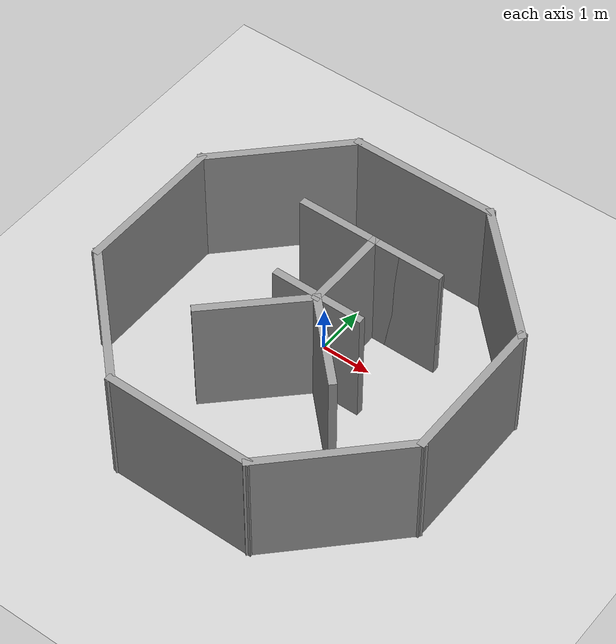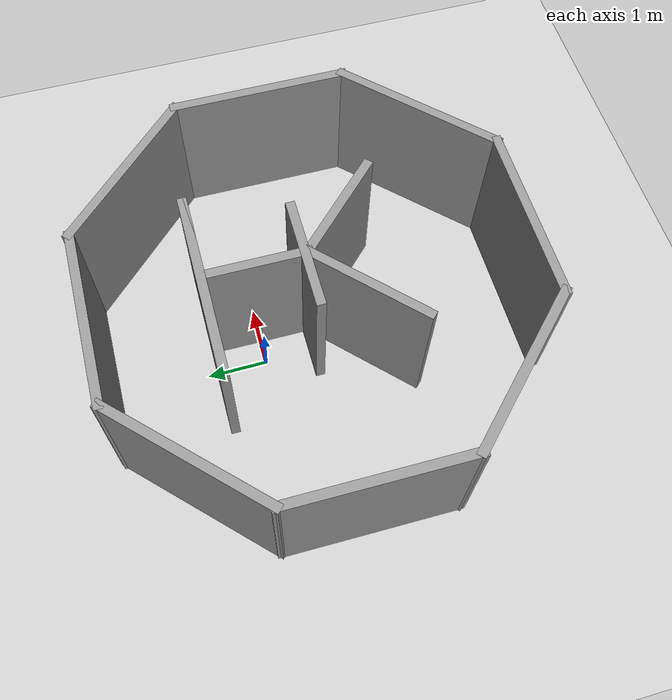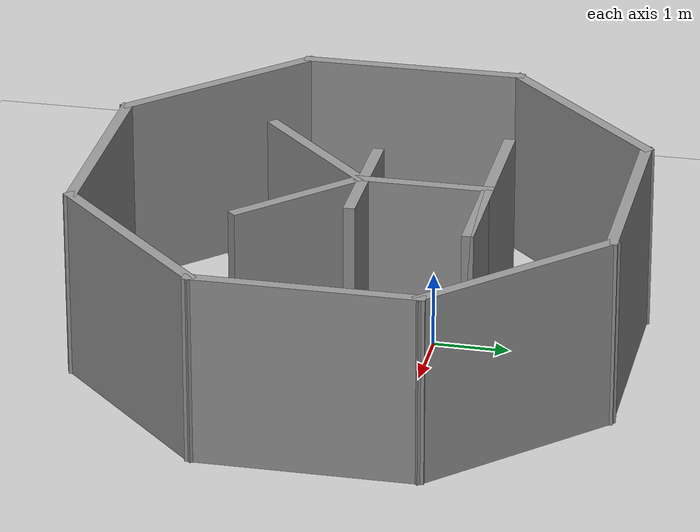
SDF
<sdf version="1.7">
 <world name="default">
  <light name="sun" type="directional">
   <pose>0 0 10 0 -0 0</pose>
   <diffuse>0.8 0.8 0.8 1</diffuse>
   <specular>0.2 0.2 0.2 1</specular>
   <attenuation>
    <range>1000</range>
    <constant>0.9</constant>
    <linear>0.01</linear>
    <quadratic>0.001</quadratic>
   </attenuation>
   <direction>-0.5 0.1 -0.9</direction>
   <spot><inner_angle>0</inner_angle><outer_angle>0</outer_angle><falloff>0</falloff></spot>
  </light>
  <model name="ground_plane">
   <static>1</static>
   <link name="link">
    <collision name="collision">
     <geometry><plane><normal>0 0 1</normal><size>100 100</size></plane></geometry>
     <surface>
      <contact><collide_bitmask>65535</collide_bitmask></contact>
      <friction><ode><mu>100</mu><mu2>50</mu2></ode></friction>
     </surface>
    </collision>
    <visual name="visual">
     <cast_shadows>0</cast_shadows>
     <geometry><plane><normal>0 0 1</normal><size>100 100</size></plane></geometry>
     <material>
      <script><uri>file://media/materials/scripts/gazebo.material</uri><name>Gazebo/Grey</name></script>
     </material>
    </visual>
   </link>
  </model>
  <gravity>0 0 -9.8</gravity>
  <magnetic_field>6e-06 2.3e-05 -4.2e-05</magnetic_field>
  <atmosphere type="adiabatic"/>
  <physics type="ode">
   <max_step_size>0.001</max_step_size>
   <real_time_factor>1</real_time_factor>
   <real_time_update_rate>1000</real_time_update_rate>
  </physics>
  <scene><ambient>0.4 0.4 0.4 1</ambient><background>0.7 0.7 0.7 1</background><shadows>1</shadows></scene>
  <spherical_coordinates>
   <surface_model>EARTH_WGS84</surface_model>
   <latitude_deg>0</latitude_deg>
   <longitude_deg>0</longitude_deg>
   <elevation>0</elevation>
   <heading_deg>0</heading_deg>
  </spherical_coordinates>
  <model name="hik_map">
   <link name="Wall_53">
    <pose>0 -4.00411 0 0 -0 0</pose>
    <visual name="Wall_53_Visual">
     <pose>0 0 1.25 0 -0 0</pose>
     <geometry><box><size>3 0.15 2.5</size></box></geometry>
     <material>
      <script><uri>file://media/materials/scripts/gazebo.material</uri><name>Gazebo/Grey</name></script>
      <ambient>1 1 1 1</ambient>
      <shader type="pixel"/>
     </material>
     <meta><layer>1</layer></meta>
    </visual>
    <collision name="Wall_53_Collision">
     <pose>0 0 1.25 0 -0 0</pose>
     <geometry><box><size>3 0.15 2.5</size></box></geometry>
     <surface>
      <friction>
       <ode><mu>1</mu><mu2>1</mu2><fdir1>0 0 0</fdir1><slip1>0</slip1><slip2>0</slip2></ode>
       <torsional>
        <coefficient>1</coefficient>
        <patch_radius>0</patch_radius>
        <surface_radius>0</surface_radius>
        <use_patch_radius>1</use_patch_radius>
        <ode><slip>0</slip></ode>
       </torsional>
      </friction>
      <bounce><restitution_coefficient>0</restitution_coefficient><threshold>1e+06</threshold></bounce>
      <contact>
       <collide_without_contact>0</collide_without_contact>
       <collide_without_contact_bitmask>1</collide_without_contact_bitmask>
       <collide_bitmask>1</collide_bitmask>
       <ode>
        <soft_cfm>0</soft_cfm>
        <soft_erp>0.2</soft_erp>
        <kp>1e+13</kp>
        <kd>1</kd>
        <max_vel>0.01</max_vel>
        <min_depth>0</min_depth>
       </ode>
       <bullet>
        <split_impulse>1</split_impulse>
        <split_impulse_penetration_threshold>-0.01</split_impulse_penetration_threshold>
        <soft_cfm>0</soft_cfm>
        <soft_erp>0.2</soft_erp>
        <kp>1e+13</kp>
        <kd>1</kd>
       </bullet>
      </contact>
     </surface>
    </collision>
   </link>
   <link name="Wall_54">
    <pose>2.43263 -2.99648 0 0 -0 0.785398</pose>
    <visual name="Wall_54_Visual">
     <pose>0 0 1.25 0 -0 0</pose>
     <geometry><box><size>3 0.15 2.5</size></box></geometry>
     <material>
      <script><uri>file://media/materials/scripts/gazebo.material</uri><name>Gazebo/Grey</name></script>
      <ambient>1 1 1 1</ambient>
      <shader type="pixel"/>
     </material>
     <meta><layer>1</layer></meta>
    </visual>
    <collision name="Wall_54_Collision">
     <pose>0 0 1.25 0 -0 0</pose>
     <geometry><box><size>3 0.15 2.5</size></box></geometry>
     <surface>
      <friction>
       <ode><mu>1</mu><mu2>1</mu2><fdir1>0 0 0</fdir1><slip1>0</slip1><slip2>0</slip2></ode>
       <torsional>
        <coefficient>1</coefficient>
        <patch_radius>0</patch_radius>
        <surface_radius>0</surface_radius>
        <use_patch_radius>1</use_patch_radius>
        <ode><slip>0</slip></ode>
       </torsional>
      </friction>
      <bounce><restitution_coefficient>0</restitution_coefficient><threshold>1e+06</threshold></bounce>
      <contact>
       <collide_without_contact>0</collide_without_contact>
       <collide_without_contact_bitmask>1</collide_without_contact_bitmask>
       <collide_bitmask>1</collide_bitmask>
       <ode>
        <soft_cfm>0</soft_cfm>
        <soft_erp>0.2</soft_erp>
        <kp>1e+13</kp>
        <kd>1</kd>
        <max_vel>0.01</max_vel>
        <min_depth>0</min_depth>
       </ode>
       <bullet>
        <split_impulse>1</split_impulse>
        <split_impulse_penetration_threshold>-0.01</split_impulse_penetration_threshold>
        <soft_cfm>0</soft_cfm>
        <soft_erp>0.2</soft_erp>
        <kp>1e+13</kp>
        <kd>1</kd>
       </bullet>
      </contact>
     </surface>
    </collision>
   </link>
   <link name="Wall_55">
    <pose>3.44026 -0.563853 0 0 -0 1.5708</pose>
    <visual name="Wall_55_Visual">
     <pose>0 0 1.25 0 -0 0</pose>
     <geometry><box><size>3 0.15 2.5</size></box></geometry>
     <material>
      <script><uri>file://media/materials/scripts/gazebo.material</uri><name>Gazebo/Grey</name></script>
      <ambient>1 1 1 1</ambient>
      <shader type="pixel"/>
     </material>
     <meta><layer>1</layer></meta>
    </visual>
    <collision name="Wall_55_Collision">
     <pose>0 0 1.25 0 -0 0</pose>
     <geometry><box><size>3 0.15 2.5</size></box></geometry>
     <surface>
      <friction>
       <ode><mu>1</mu><mu2>1</mu2><fdir1>0 0 0</fdir1><slip1>0</slip1><slip2>0</slip2></ode>
       <torsional>
        <coefficient>1</coefficient>
        <patch_radius>0</patch_radius>
        <surface_radius>0</surface_radius>
        <use_patch_radius>1</use_patch_radius>
        <ode><slip>0</slip></ode>
       </torsional>
      </friction>
      <bounce><restitution_coefficient>0</restitution_coefficient><threshold>1e+06</threshold></bounce>
      <contact>
       <collide_without_contact>0</collide_without_contact>
       <collide_without_contact_bitmask>1</collide_without_contact_bitmask>
       <collide_bitmask>1</collide_bitmask>
       <ode>
        <soft_cfm>0</soft_cfm>
        <soft_erp>0.2</soft_erp>
        <kp>1e+13</kp>
        <kd>1</kd>
        <max_vel>0.01</max_vel>
        <min_depth>0</min_depth>
       </ode>
       <bullet>
        <split_impulse>1</split_impulse>
        <split_impulse_penetration_threshold>-0.01</split_impulse_penetration_threshold>
        <soft_cfm>0</soft_cfm>
        <soft_erp>0.2</soft_erp>
        <kp>1e+13</kp>
        <kd>1</kd>
       </bullet>
      </contact>
     </surface>
    </collision>
   </link>
   <link name="Wall_56">
    <pose>-2.43263 -2.99648 0 0 -0 2.35619</pose>
    <visual name="Wall_56_Visual">
     <pose>0 0 1.25 0 -0 0</pose>
     <geometry><box><size>3 0.15 2.5</size></box></geometry>
     <material>
      <script><uri>file://media/materials/scripts/gazebo.material</uri><name>Gazebo/Grey</name></script>
      <ambient>1 1 1 1</ambient>
      <shader type="pixel"/>
     </material>
     <meta><layer>1</layer></meta>
    </visual>
    <collision name="Wall_56_Collision">
     <pose>0 0 1.25 0 -0 0</pose>
     <geometry><box><size>3 0.15 2.5</size></box></geometry>
     <surface>
      <friction>
       <ode><mu>1</mu><mu2>1</mu2><fdir1>0 0 0</fdir1><slip1>0</slip1><slip2>0</slip2></ode>
       <torsional>
        <coefficient>1</coefficient>
        <patch_radius>0</patch_radius>
        <surface_radius>0</surface_radius>
        <use_patch_radius>1</use_patch_radius>
        <ode><slip>0</slip></ode>
       </torsional>
      </friction>
      <bounce><restitution_coefficient>0</restitution_coefficient><threshold>1e+06</threshold></bounce>
      <contact>
       <collide_without_contact>0</collide_without_contact>
       <collide_without_contact_bitmask>1</collide_without_contact_bitmask>
       <collide_bitmask>1</collide_bitmask>
       <ode>
        <soft_cfm>0</soft_cfm>
        <soft_erp>0.2</soft_erp>
        <kp>1e+13</kp>
        <kd>1</kd>
        <max_vel>0.01</max_vel>
        <min_depth>0</min_depth>
       </ode>
       <bullet>
        <split_impulse>1</split_impulse>
        <split_impulse_penetration_threshold>-0.01</split_impulse_penetration_threshold>
        <soft_cfm>0</soft_cfm>
        <soft_erp>0.2</soft_erp>
        <kp>1e+13</kp>
        <kd>1</kd>
       </bullet>
      </contact>
     </surface>
    </collision>
   </link>
   <link name="Wall_57">
    <pose>-3.44025 -0.563853 0 0 -0 1.5708</pose>
    <visual name="Wall_57_Visual">
     <pose>0 0 1.25 0 -0 0</pose>
     <geometry><box><size>3 0.15 2.5</size></box></geometry>
     <material>
      <script><uri>file://media/materials/scripts/gazebo.material</uri><name>Gazebo/Grey</name></script>
      <ambient>1 1 1 1</ambient>
      <shader type="pixel"/>
     </material>
     <meta><layer>1</layer></meta>
    </visual>
    <collision name="Wall_57_Collision">
     <pose>0 0 1.25 0 -0 0</pose>
     <geometry><box><size>3 0.15 2.5</size></box></geometry>
     <surface>
      <friction>
       <ode><mu>1</mu><mu2>1</mu2><fdir1>0 0 0</fdir1><slip1>0</slip1><slip2>0</slip2></ode>
       <torsional>
        <coefficient>1</coefficient>
        <patch_radius>0</patch_radius>
        <surface_radius>0</surface_radius>
        <use_patch_radius>1</use_patch_radius>
        <ode><slip>0</slip></ode>
       </torsional>
      </friction>
      <bounce><restitution_coefficient>0</restitution_coefficient><threshold>1e+06</threshold></bounce>
      <contact>
       <collide_without_contact>0</collide_without_contact>
       <collide_without_contact_bitmask>1</collide_without_contact_bitmask>
       <collide_bitmask>1</collide_bitmask>
       <ode>
        <soft_cfm>0</soft_cfm>
        <soft_erp>0.2</soft_erp>
        <kp>1e+13</kp>
        <kd>1</kd>
        <max_vel>0.01</max_vel>
        <min_depth>0</min_depth>
       </ode>
       <bullet>
        <split_impulse>1</split_impulse>
        <split_impulse_penetration_threshold>-0.01</split_impulse_penetration_threshold>
        <soft_cfm>0</soft_cfm>
        <soft_erp>0.2</soft_erp>
        <kp>1e+13</kp>
        <kd>1</kd>
       </bullet>
      </contact>
     </surface>
    </collision>
   </link>
   <link name="Wall_58">
    <pose>-2.43263 1.86877 0 0 -0 0.785398</pose>
    <visual name="Wall_58_Visual">
     <pose>0 0 1.25 0 -0 0</pose>
     <geometry><box><size>3 0.15 2.5</size></box></geometry>
     <material>
      <script><uri>file://media/materials/scripts/gazebo.material</uri><name>Gazebo/Grey</name></script>
      <ambient>1 1 1 1</ambient>
      <shader type="pixel"/>
     </material>
     <meta><layer>1</layer></meta>
    </visual>
    <collision name="Wall_58_Collision">
     <pose>0 0 1.25 0 -0 0</pose>
     <geometry><box><size>3 0.15 2.5</size></box></geometry>
     <surface>
      <friction>
       <ode><mu>1</mu><mu2>1</mu2><fdir1>0 0 0</fdir1><slip1>0</slip1><slip2>0</slip2></ode>
       <torsional>
        <coefficient>1</coefficient>
        <patch_radius>0</patch_radius>
        <surface_radius>0</surface_radius>
        <use_patch_radius>1</use_patch_radius>
        <ode><slip>0</slip></ode>
       </torsional>
      </friction>
      <bounce><restitution_coefficient>0</restitution_coefficient><threshold>1e+06</threshold></bounce>
      <contact>
       <collide_without_contact>0</collide_without_contact>
       <collide_without_contact_bitmask>1</collide_without_contact_bitmask>
       <collide_bitmask>1</collide_bitmask>
       <ode>
        <soft_cfm>0</soft_cfm>
        <soft_erp>0.2</soft_erp>
        <kp>1e+13</kp>
        <kd>1</kd>
        <max_vel>0.01</max_vel>
        <min_depth>0</min_depth>
       </ode>
       <bullet>
        <split_impulse>1</split_impulse>
        <split_impulse_penetration_threshold>-0.01</split_impulse_penetration_threshold>
        <soft_cfm>0</soft_cfm>
        <soft_erp>0.2</soft_erp>
        <kp>1e+13</kp>
        <kd>1</kd>
       </bullet>
      </contact>
     </surface>
    </collision>
   </link>
   <link name="Wall_59">
    <pose>0 2.8764 0 0 -0 0</pose>
    <visual name="Wall_59_Visual">
     <pose>0 0 1.25 0 -0 0</pose>
     <geometry><box><size>3 0.15 2.5</size></box></geometry>
     <material>
      <script><uri>file://media/materials/scripts/gazebo.material</uri><name>Gazebo/Grey</name></script>
      <ambient>1 1 1 1</ambient>
      <shader type="pixel"/>
     </material>
     <meta><layer>1</layer></meta>
    </visual>
    <collision name="Wall_59_Collision">
     <pose>0 0 1.25 0 -0 0</pose>
     <geometry><box><size>3 0.15 2.5</size></box></geometry>
     <surface>
      <friction>
       <ode><mu>1</mu><mu2>1</mu2><fdir1>0 0 0</fdir1><slip1>0</slip1><slip2>0</slip2></ode>
       <torsional>
        <coefficient>1</coefficient>
        <patch_radius>0</patch_radius>
        <surface_radius>0</surface_radius>
        <use_patch_radius>1</use_patch_radius>
        <ode><slip>0</slip></ode>
       </torsional>
      </friction>
      <bounce><restitution_coefficient>0</restitution_coefficient><threshold>1e+06</threshold></bounce>
      <contact>
       <collide_without_contact>0</collide_without_contact>
       <collide_without_contact_bitmask>1</collide_without_contact_bitmask>
       <collide_bitmask>1</collide_bitmask>
       <ode>
        <soft_cfm>0</soft_cfm>
        <soft_erp>0.2</soft_erp>
        <kp>1e+13</kp>
        <kd>1</kd>
        <max_vel>0.01</max_vel>
        <min_depth>0</min_depth>
       </ode>
       <bullet>
        <split_impulse>1</split_impulse>
        <split_impulse_penetration_threshold>-0.01</split_impulse_penetration_threshold>
        <soft_cfm>0</soft_cfm>
        <soft_erp>0.2</soft_erp>
        <kp>1e+13</kp>
        <kd>1</kd>
       </bullet>
      </contact>
     </surface>
    </collision>
   </link>
   <link name="Wall_60">
    <pose>2.43263 1.86877 0 0 0 -0.785398</pose>
    <visual name="Wall_60_Visual">
     <pose>0 0 1.25 0 -0 0</pose>
     <geometry><box><size>3 0.15 2.5</size></box></geometry>
     <material>
      <script><uri>file://media/materials/scripts/gazebo.material</uri><name>Gazebo/Grey</name></script>
      <ambient>1 1 1 1</ambient>
      <shader type="pixel"/>
     </material>
     <meta><layer>1</layer></meta>
    </visual>
    <collision name="Wall_60_Collision">
     <pose>0 0 1.25 0 -0 0</pose>
     <geometry><box><size>3 0.15 2.5</size></box></geometry>
     <surface>
      <friction>
       <ode><mu>1</mu><mu2>1</mu2><fdir1>0 0 0</fdir1><slip1>0</slip1><slip2>0</slip2></ode>
       <torsional>
        <coefficient>1</coefficient>
        <patch_radius>0</patch_radius>
        <surface_radius>0</surface_radius>
        <use_patch_radius>1</use_patch_radius>
        <ode><slip>0</slip></ode>
       </torsional>
      </friction>
      <bounce><restitution_coefficient>0</restitution_coefficient><threshold>1e+06</threshold></bounce>
      <contact>
       <collide_without_contact>0</collide_without_contact>
       <collide_without_contact_bitmask>1</collide_without_contact_bitmask>
       <collide_bitmask>1</collide_bitmask>
       <ode>
        <soft_cfm>0</soft_cfm>
        <soft_erp>0.2</soft_erp>
        <kp>1e+13</kp>
        <kd>1</kd>
        <max_vel>0.01</max_vel>
        <min_depth>0</min_depth>
       </ode>
       <bullet>
        <split_impulse>1</split_impulse>
        <split_impulse_penetration_threshold>-0.01</split_impulse_penetration_threshold>
        <soft_cfm>0</soft_cfm>
        <soft_erp>0.2</soft_erp>
        <kp>1e+13</kp>
        <kd>1</kd>
       </bullet>
      </contact>
     </surface>
    </collision>
   </link>
   <link name="Wall_61">
    <pose>-0.067958 -0.365201 0 0 0 -1.5708</pose>
    <inertial>
     <inertia><ixx>0</ixx><ixy>0</ixy><ixz>0</ixz><iyy>0</iyy><iyz>0</iyz><izz>0</izz></inertia>
     <mass>0</mass>
    </inertial>
    <visual name="Wall_61_Visual">
     <pose>0 0 1.25 0 -0 0</pose>
     <geometry><box><size>1.85943 0.15 2.5</size></box></geometry>
     <material>
      <script><uri>file://media/materials/scripts/gazebo.material</uri><name>Gazebo/Grey</name></script>
      <ambient>1 1 1 1</ambient>
      <shader type="pixel"/>
     </material>
     <meta><layer>1</layer></meta>
    </visual>
    <collision name="Wall_61_Collision">
     <pose>0 0 1.25 0 -0 0</pose>
     <geometry><box><size>1.85943 0.15 2.5</size></box></geometry>
     <surface>
      <friction>
       <ode><mu>1</mu><mu2>1</mu2><fdir1>0 0 0</fdir1><slip1>0</slip1><slip2>0</slip2></ode>
       <torsional>
        <coefficient>1</coefficient>
        <patch_radius>0</patch_radius>
        <surface_radius>0</surface_radius>
        <use_patch_radius>1</use_patch_radius>
        <ode><slip>0</slip></ode>
       </torsional>
      </friction>
      <bounce><restitution_coefficient>0</restitution_coefficient><threshold>1e+06</threshold></bounce>
      <contact>
       <collide_without_contact>0</collide_without_contact>
       <collide_without_contact_bitmask>1</collide_without_contact_bitmask>
       <collide_bitmask>1</collide_bitmask>
       <ode>
        <soft_cfm>0</soft_cfm>
        <soft_erp>0.2</soft_erp>
        <kp>1e+13</kp>
        <kd>1</kd>
        <max_vel>0.01</max_vel>
        <min_depth>0</min_depth>
       </ode>
       <bullet>
        <split_impulse>1</split_impulse>
        <split_impulse_penetration_threshold>-0.01</split_impulse_penetration_threshold>
        <soft_cfm>0</soft_cfm>
        <soft_erp>0.2</soft_erp>
        <kp>1e+13</kp>
        <kd>1</kd>
       </bullet>
      </contact>
     </surface>
    </collision>
   </link>
   <link name="Wall_62">
    <pose>0.632377 0.298943 0 0 -0 0.785398</pose>
    <visual name="Wall_62_Visual">
     <pose>0 0 1.25 0 -0 0</pose>
     <geometry><box><size>2 0.15 2.5</size></box></geometry>
     <material>
      <script><uri>file://media/materials/scripts/gazebo.material</uri><name>Gazebo/Grey</name></script>
      <ambient>1 1 1 1</ambient>
      <shader type="pixel"/>
     </material>
     <meta><layer>1</layer></meta>
    </visual>
    <collision name="Wall_62_Collision">
     <pose>0 0 1.25 0 -0 0</pose>
     <geometry><box><size>2 0.15 2.5</size></box></geometry>
     <surface>
      <friction>
       <ode><mu>1</mu><mu2>1</mu2><fdir1>0 0 0</fdir1><slip1>0</slip1><slip2>0</slip2></ode>
       <torsional>
        <coefficient>1</coefficient>
        <patch_radius>0</patch_radius>
        <surface_radius>0</surface_radius>
        <use_patch_radius>1</use_patch_radius>
        <ode><slip>0</slip></ode>
       </torsional>
      </friction>
      <bounce><restitution_coefficient>0</restitution_coefficient><threshold>1e+06</threshold></bounce>
      <contact>
       <collide_without_contact>0</collide_without_contact>
       <collide_without_contact_bitmask>1</collide_without_contact_bitmask>
       <collide_bitmask>1</collide_bitmask>
       <ode>
        <soft_cfm>0</soft_cfm>
        <soft_erp>0.2</soft_erp>
        <kp>1e+13</kp>
        <kd>1</kd>
        <max_vel>0.01</max_vel>
        <min_depth>0</min_depth>
       </ode>
       <bullet>
        <split_impulse>1</split_impulse>
        <split_impulse_penetration_threshold>-0.01</split_impulse_penetration_threshold>
        <soft_cfm>0</soft_cfm>
        <soft_erp>0.2</soft_erp>
        <kp>1e+13</kp>
        <kd>1</kd>
       </bullet>
      </contact>
     </surface>
    </collision>
   </link>
   <link name="Wall_63">
    <pose>0.697635 -1.09759 0 0 0 -0.80122</pose>
    <visual name="Wall_63_Visual">
     <pose>0 0 1.25 0 -0 0</pose>
     <geometry><box><size>2.21755 0.15 2.5</size></box></geometry>
     <material>
      <script><uri>file://media/materials/scripts/gazebo.material</uri><name>Gazebo/Grey</name></script>
      <ambient>1 1 1 1</ambient>
      <shader type="pixel"/>
     </material>
     <meta><layer>1</layer></meta>
    </visual>
    <collision name="Wall_63_Collision">
     <pose>0 0 1.25 0 -0 0</pose>
     <geometry><box><size>2.21755 0.15 2.5</size></box></geometry>
     <surface>
      <friction>
       <ode><mu>1</mu><mu2>1</mu2><fdir1>0 0 0</fdir1><slip1>0</slip1><slip2>0</slip2></ode>
       <torsional>
        <coefficient>1</coefficient>
        <patch_radius>0</patch_radius>
        <surface_radius>0</surface_radius>
        <use_patch_radius>1</use_patch_radius>
        <ode><slip>0</slip></ode>
       </torsional>
      </friction>
      <bounce><restitution_coefficient>0</restitution_coefficient><threshold>1e+06</threshold></bounce>
      <contact>
       <collide_without_contact>0</collide_without_contact>
       <collide_without_contact_bitmask>1</collide_without_contact_bitmask>
       <collide_bitmask>1</collide_bitmask>
       <ode>
        <soft_cfm>0</soft_cfm>
        <soft_erp>0.2</soft_erp>
        <kp>1e+13</kp>
        <kd>1</kd>
        <max_vel>0.01</max_vel>
        <min_depth>0</min_depth>
       </ode>
       <bullet>
        <split_impulse>1</split_impulse>
        <split_impulse_penetration_threshold>-0.01</split_impulse_penetration_threshold>
        <soft_cfm>0</soft_cfm>
        <soft_erp>0.2</soft_erp>
        <kp>1e+13</kp>
        <kd>1</kd>
       </bullet>
      </contact>
     </surface>
    </collision>
   </link>
   <link name="Wall_64">
    <pose>-0.844827 -0.355131 0 0 -0 3.14159</pose>
    <visual name="Wall_64_Visual">
     <pose>0 0 1.25 0 -0 0</pose>
     <geometry><box><size>1.79626 0.15 2.5</size></box></geometry>
     <material>
      <script><uri>file://media/materials/scripts/gazebo.material</uri><name>Gazebo/Grey</name></script>
      <ambient>1 1 1 1</ambient>
      <shader type="pixel"/>
     </material>
     <meta><layer>1</layer></meta>
    </visual>
    <collision name="Wall_64_Collision">
     <pose>0 0 1.25 0 -0 0</pose>
     <geometry><box><size>1.79626 0.15 2.5</size></box></geometry>
     <surface>
      <friction>
       <ode><mu>1</mu><mu2>1</mu2><fdir1>0 0 0</fdir1><slip1>0</slip1><slip2>0</slip2></ode>
       <torsional>
        <coefficient>1</coefficient>
        <patch_radius>0</patch_radius>
        <surface_radius>0</surface_radius>
        <use_patch_radius>1</use_patch_radius>
        <ode><slip>0</slip></ode>
       </torsional>
      </friction>
      <bounce><restitution_coefficient>0</restitution_coefficient><threshold>1e+06</threshold></bounce>
      <contact>
       <collide_without_contact>0</collide_without_contact>
       <collide_without_contact_bitmask>1</collide_without_contact_bitmask>
       <collide_bitmask>1</collide_bitmask>
       <ode>
        <soft_cfm>0</soft_cfm>
        <soft_erp>0.2</soft_erp>
        <kp>1e+13</kp>
        <kd>1</kd>
        <max_vel>0.01</max_vel>
        <min_depth>0</min_depth>
       </ode>
       <bullet>
        <split_impulse>1</split_impulse>
        <split_impulse_penetration_threshold>-0.01</split_impulse_penetration_threshold>
        <soft_cfm>0</soft_cfm>
        <soft_erp>0.2</soft_erp>
        <kp>1e+13</kp>
        <kd>1</kd>
       </bullet>
      </contact>
     </surface>
    </collision>
   </link>
   <link name="Wall_65">
    <pose>-1.66796 0.319869 0 0 -0 1.5708</pose>
    <visual name="Wall_65_Visual">
     <pose>0 0 1.25 0 -0 0</pose>
     <geometry><box><size>1.5 0.15 2.5</size></box></geometry>
     <material>
      <script><uri>file://media/materials/scripts/gazebo.material</uri><name>Gazebo/Grey</name></script>
      <ambient>1 1 1 1</ambient>
      <shader type="pixel"/>
     </material>
     <meta><layer>1</layer></meta>
    </visual>
    <collision name="Wall_65_Collision">
     <pose>0 0 1.25 0 -0 0</pose>
     <geometry><box><size>1.5 0.15 2.5</size></box></geometry>
     <surface>
      <friction>
       <ode><mu>1</mu><mu2>1</mu2><fdir1>0 0 0</fdir1><slip1>0</slip1><slip2>0</slip2></ode>
       <torsional>
        <coefficient>1</coefficient>
        <patch_radius>0</patch_radius>
        <surface_radius>0</surface_radius>
        <use_patch_radius>1</use_patch_radius>
        <ode><slip>0</slip></ode>
       </torsional>
      </friction>
      <bounce><restitution_coefficient>0</restitution_coefficient><threshold>1e+06</threshold></bounce>
      <contact>
       <collide_without_contact>0</collide_without_contact>
       <collide_without_contact_bitmask>1</collide_without_contact_bitmask>
       <collide_bitmask>1</collide_bitmask>
       <ode>
        <soft_cfm>0</soft_cfm>
        <soft_erp>0.2</soft_erp>
        <kp>1e+13</kp>
        <kd>1</kd>
        <max_vel>0.01</max_vel>
        <min_depth>0</min_depth>
       </ode>
       <bullet>
        <split_impulse>1</split_impulse>
        <split_impulse_penetration_threshold>-0.01</split_impulse_penetration_threshold>
        <soft_cfm>0</soft_cfm>
        <soft_erp>0.2</soft_erp>
        <kp>1e+13</kp>
        <kd>1</kd>
       </bullet>
      </contact>
     </surface>
    </collision>
   </link>
   <link name="Wall_66">
    <pose>-1.66796 -0.430131 0 0 0 -1.5708</pose>
    <visual name="Wall_66_Visual">
     <pose>0 0 1.25 0 -0 0</pose>
     <geometry><box><size>3 0.15 2.5</size></box></geometry>
     <material>
      <script><uri>file://media/materials/scripts/gazebo.material</uri><name>Gazebo/Grey</name></script>
      <ambient>1 1 1 1</ambient>
      <shader type="pixel"/>
     </material>
     <meta><layer>1</layer></meta>
    </visual>
    <collision name="Wall_66_Collision">
     <pose>0 0 1.25 0 -0 0</pose>
     <geometry><box><size>3 0.15 2.5</size></box></geometry>
     <surface>
      <friction>
       <ode><mu>1</mu><mu2>1</mu2><fdir1>0 0 0</fdir1><slip1>0</slip1><slip2>0</slip2></ode>
       <torsional>
        <coefficient>1</coefficient>
        <patch_radius>0</patch_radius>
        <surface_radius>0</surface_radius>
        <use_patch_radius>1</use_patch_radius>
        <ode><slip>0</slip></ode>
       </torsional>
      </friction>
      <bounce><restitution_coefficient>0</restitution_coefficient><threshold>1e+06</threshold></bounce>
      <contact>
       <collide_without_contact>0</collide_without_contact>
       <collide_without_contact_bitmask>1</collide_without_contact_bitmask>
       <collide_bitmask>1</collide_bitmask>
       <ode>
        <soft_cfm>0</soft_cfm>
        <soft_erp>0.2</soft_erp>
        <kp>1e+13</kp>
        <kd>1</kd>
        <max_vel>0.01</max_vel>
        <min_depth>0</min_depth>
       </ode>
       <bullet>
        <split_impulse>1</split_impulse>
        <split_impulse_penetration_threshold>-0.01</split_impulse_penetration_threshold>
        <soft_cfm>0</soft_cfm>
        <soft_erp>0.2</soft_erp>
        <kp>1e+13</kp>
        <kd>1</kd>
       </bullet>
      </contact>
     </surface>
    </collision>
   </link>
   <static>1</static>
   <pose>0.840727 -0.89095 0 0 0 -1.57</pose>
  </model>
 </world>
</sdf>
